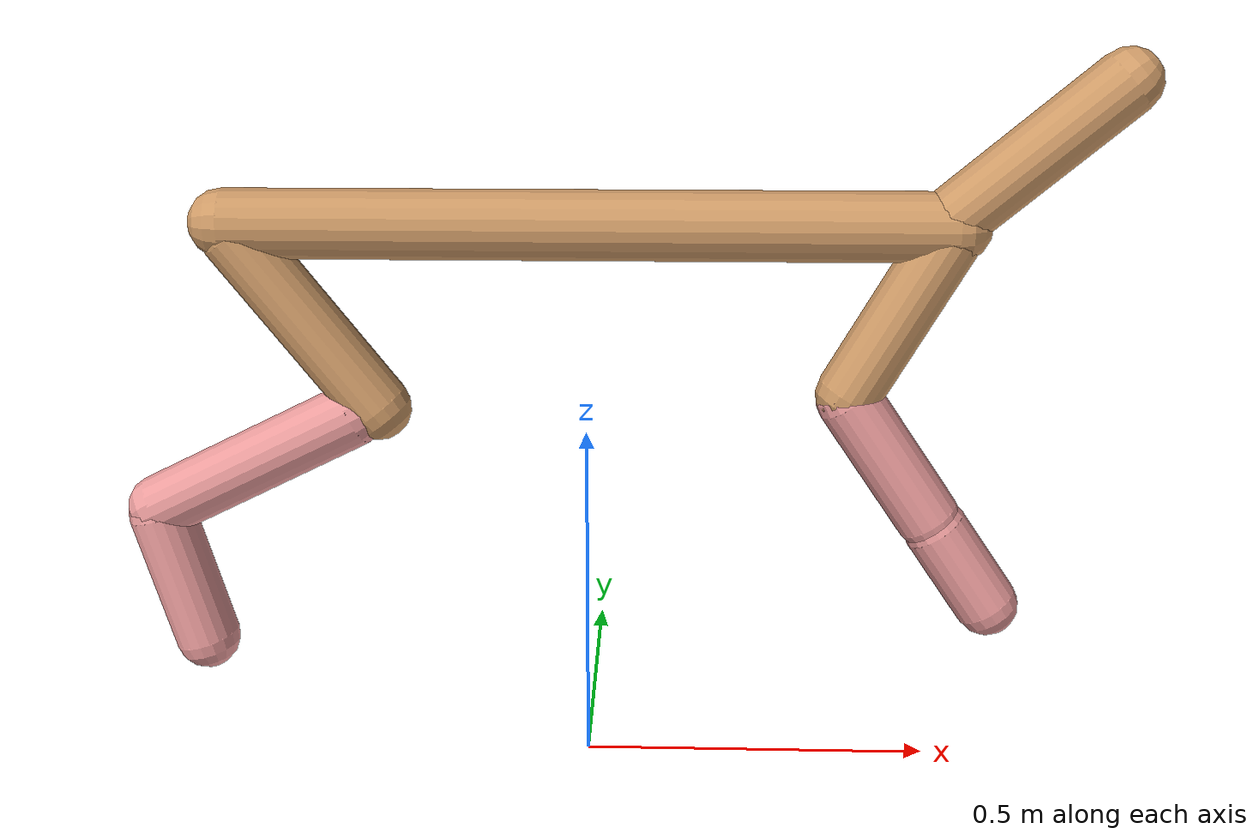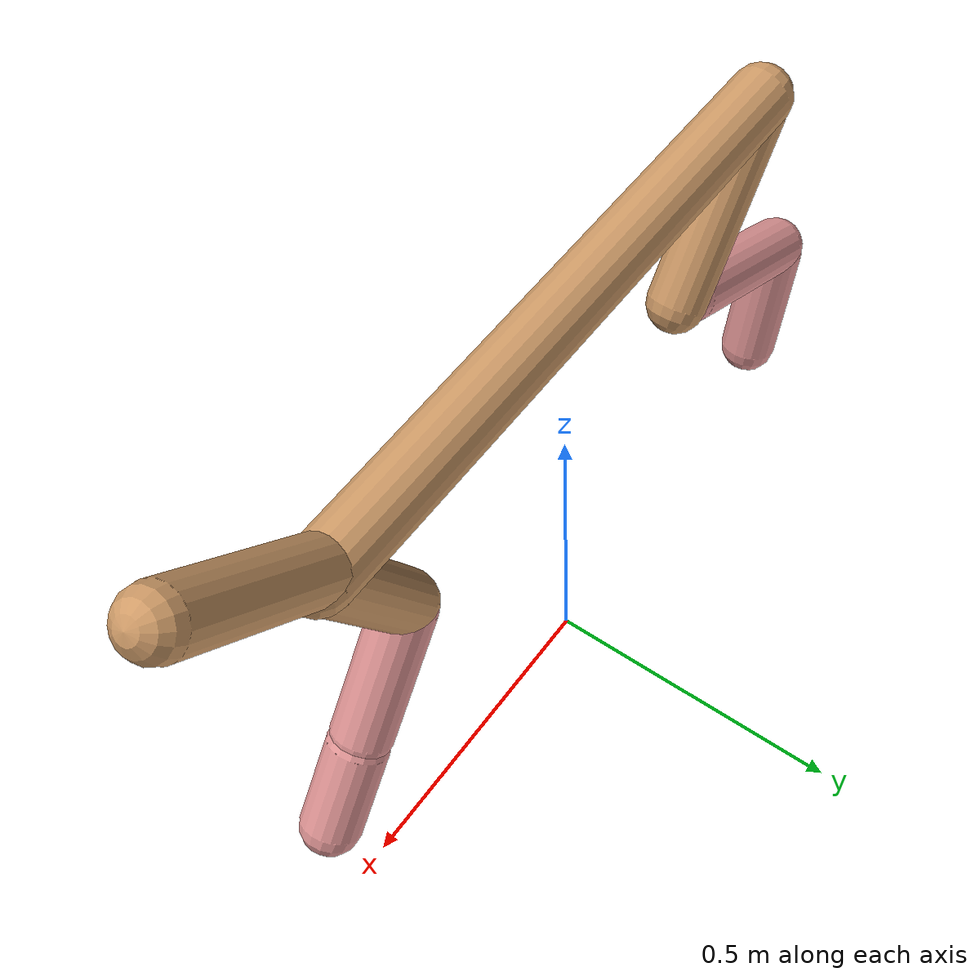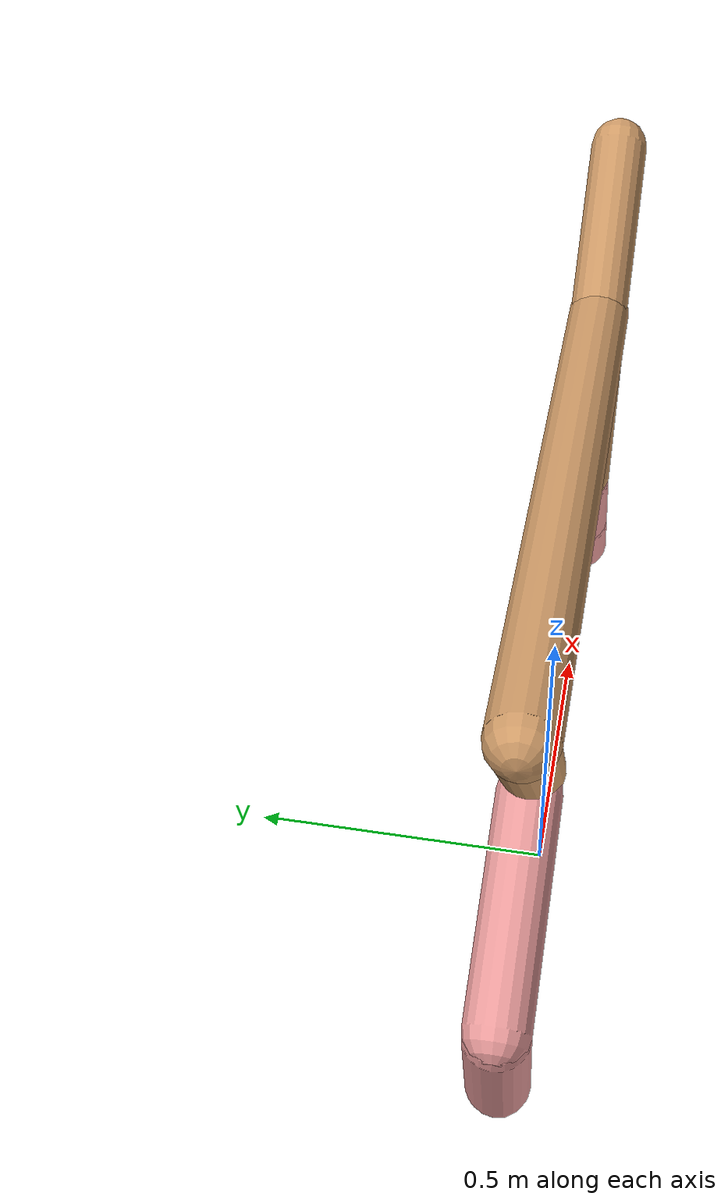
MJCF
<mujoco model="cheetah">
  <compiler angle="radian" coordinate="local" inertiafromgeom="true" settotalmass="14" />
  <default>
    <joint armature=".1" damping=".01" limited="true" solimplimit="0 .8 .03" solreflimit=".02 1" stiffness="8" />
    <geom conaffinity="0" condim="3" contype="1" friction="0.8 .1 .1" rgba="0.8 0.6 .4 1" solimp="0.0 0.8 0.01" solref="0.02 1" />
    <motor ctrllimited="true" ctrlrange="-1 1" />
  </default>
  <size nstack="300000" nuser_geom="1" />
  <option gravity="0 0 -9.81" timestep="0.01" />
  <worldbody>
    <body name="torso" pos="0.0 0.0 0.8000263836968933">
      <joint armature="0" axis="1 0 0" damping="0" limited="false" name="ignorex" pos="0 0 0" stiffness="0" type="slide" />
      <joint armature="0" axis="0 0 1" damping="0" limited="false" name="ignorez" pos="0 0 0" stiffness="0" type="slide" />
      <joint armature="0" axis="0 1 0" damping="0" limited="false" name="ignorey" pos="0 0 0" stiffness="0" type="hinge" />
      <geom fromto="-0.5 0.0 0.0 0.5066230126622431 0.0 0.0" name="torso" size="0.04921331206996144" type="capsule" />
      <geom axisangle="0 1 0 .87" name="head" pos="0.606623012662243 0.0 0.1" size="0.04641870091625745 0.15" type="capsule" />

      <body name="bthigh" pos="-.5 0 0">
        <joint axis="0 1 0" damping="6" name="bthigh" pos="0 0 0" range="-.52 1.05" stiffness="240" type="hinge" />
        <geom axisangle="0 1 0 -3.8" name="bthigh" pos="0.10749418522354834 0.0 -0.13974244079061285" size="0.04685944130841097 0.15729137765766907" type="capsule" />
        <body name="bshin" pos="0.17498837044709667 0.0 -0.2694848815812257">
          <joint axis="0 1 0" damping="4.5" name="bshin" pos="0 0 0" range="-.785 .785" stiffness="180" type="hinge" />
          <geom axisangle="0 1 0 -2.03" name="bshin" pos="-0.15137283695710493 0.0 -0.07568641847855247" rgba="0.9 0.6 0.6 1" size="0.04685944130841097 0.16271521826655422" type="capsule" />
          <body name="bfoot" pos="-0.30274567391420987 0.0 -0.15137283695710493">
            <joint axis="0 1 0" damping="3" name="bfoot" pos="0 0 0" range="-.4 .785" stiffness="120" type="hinge" />
            <geom axisangle="0 1 0 -.27" name="bfoot" pos="0.03235436286468377 0.0 -0.10461243992914418" rgba="0.9 0.6 0.6 1" size="0.04685944130841097 0.10196820344704065" type="capsule" />
            <inertial mass="10" />
          </body>
        </body>
      </body>
      <body name="fthigh" pos="0.5066230126622431 0.0 0.0">
        <joint axis="0 1 0" damping="4.5" name="fthigh" pos="0 0 0" range="-1.5 0.8" stiffness="180" type="hinge" />
        <geom axisangle="0 1 0 .52" name="fthigh" pos="-0.07106672089690955 0.0 -0.12182866439470207" size="0.046188450701309836 0.13511705147324163" type="capsule" />
        <body name="fshin" pos="-0.1421334417938191 0.0 -0.24365732878940413">
          <joint axis="0 1 0" damping="3" name="fshin" pos="0 0 0" range="-1.2 1.1" stiffness="120" type="hinge" />
          <geom axisangle="0 1 0 -.6" name="fshin" pos="0.06598788305109803 0.0 -0.0913678380707511" rgba="0.9 0.6 0.6 1" size="0.046188450701309836 0.10768727410649331" type="capsule" />
          <body name="ffoot" pos="0.13197576610219605 0.0 -0.1827356761415022">
            <joint axis="0 1 0" damping="1.5" name="ffoot" pos="0 0 0" range="-3.1 -0.3" stiffness="60" type="hinge" />
            <geom axisangle="0 1 0 -.6" name="ffoot" pos="0.04560253245018781 0.0 -0.07093727270029215" rgba="0.9 0.6 0.6 1" size="0.046188450701309836 0.0711142376174956" type="capsule" />
            <inertial mass="10" />
          </body>
        </body>
      </body>
    </body>
  </worldbody>
  <actuator>
    <motor gear="120" joint="bthigh" name="bthigh" />
    <motor gear="90" joint="bshin" name="bshin" />
    <motor gear="60" joint="bfoot" name="bfoot" />
    <motor gear="120" joint="fthigh" name="fthigh" />
    <motor gear="60" joint="fshin" name="fshin" />
    <motor gear="30" joint="ffoot" name="ffoot" />
  </actuator>
</mujoco>
